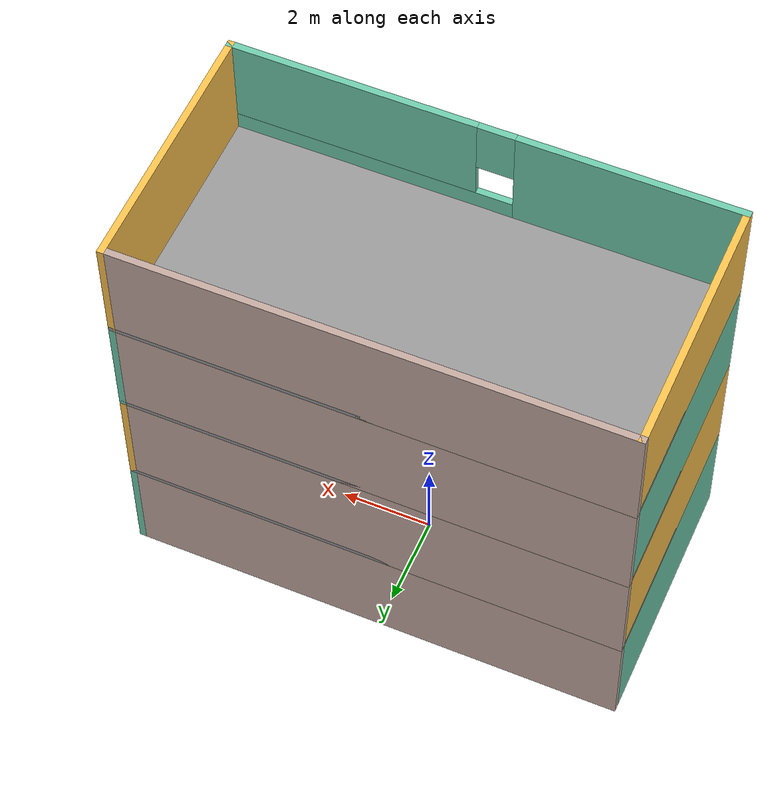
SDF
<?xml version='1.0'?>
<sdf version='1.4'>
  <model name='building2'>
    <pose>0.161621 -0.206032 0 0 -0 0</pose>
    <link name='Floor_1'>
      <collision name='Floor_1_Collision'>
        <geometry>
          <box>
            <size>11 5.75 0.1</size>
          </box>
        </geometry>
        <pose>0 0 0.05 0 -0 0</pose>
      </collision>
      <visual name='Floor_1_Visual'>
        <pose>0 0 0.05 0 -0 0</pose>
        <geometry>
          <box>
            <size>11 5.75 0.1</size>
          </box>
        </geometry>
        <material>
          <script>
            <uri>file://media/materials/scripts/gazebo.material</uri>
            <name>Gazebo/Grey</name>
          </script>
          <ambient>1 1 1 1</ambient>
        </material>
      </visual>
      <pose>-0 0 2.5 0 -0 0</pose>
    </link>
    <link name='Floor_2'>
      <collision name='Floor_2_Collision'>
        <geometry>
          <box>
            <size>11 5.75 0.1</size>
          </box>
        </geometry>
        <pose>0 0 0.05 0 -0 0</pose>
      </collision>
      <visual name='Floor_2_Visual'>
        <pose>0 0 0.05 0 -0 0</pose>
        <geometry>
          <box>
            <size>11 5.75 0.1</size>
          </box>
        </geometry>
        <material>
          <script>
            <uri>file://media/materials/scripts/gazebo.material</uri>
            <name>Gazebo/Grey</name>
          </script>
          <ambient>1 1 1 1</ambient>
        </material>
      </visual>
      <pose>-0 0 5 0 -0 0</pose>
    </link>
    <link name='Floor_3'>
      <collision name='Floor_3_Collision'>
        <geometry>
          <box>
            <size>11 5.75 0.1</size>
          </box>
        </geometry>
        <pose>0 0 0.05 0 -0 0</pose>
      </collision>
      <visual name='Floor_3_Visual'>
        <pose>0 0 0.05 0 -0 0</pose>
        <geometry>
          <box>
            <size>11 5.75 0.1</size>
          </box>
        </geometry>
        <material>
          <script>
            <uri>file://media/materials/scripts/gazebo.material</uri>
            <name>Gazebo/Grey</name>
          </script>
          <ambient>1 1 1 1</ambient>
        </material>
      </visual>
      <pose>-0 0 7.5 0 -0 0</pose>
    </link>
    <link name='Wall_10'>
      <collision name='Wall_10_Collision'>
        <geometry>
          <box>
            <size>5.75 0.15 2.5</size>
          </box>
        </geometry>
        <pose>0 0 1.25 0 -0 0</pose>
      </collision>
      <visual name='Wall_10_Visual'>
        <pose>0 0 1.25 0 -0 0</pose>
        <geometry>
          <box>
            <size>5.75 0.15 2.5</size>
          </box>
        </geometry>
        <material>
          <script>
            <uri>file://media/materials/scripts/gazebo.material</uri>
            <name>Gazebo/Grey</name>
          </script>
          <ambient>0.435294 0.796078 0.67451 1</ambient>
        </material>
      </visual>
      <pose>5.425 0 0 0 -0 1.5708</pose>
    </link>
    <link name='Wall_11'>
      <collision name='Wall_11_Collision'>
        <geometry>
          <box>
            <size>11 0.15 2.5</size>
          </box>
        </geometry>
        <pose>0 0 1.25 0 -0 0</pose>
      </collision>
      <visual name='Wall_11_Visual'>
        <pose>0 0 1.25 0 -0 0</pose>
        <geometry>
          <box>
            <size>11 0.15 2.5</size>
          </box>
        </geometry>
        <material>
          <script>
            <uri>file://media/materials/scripts/gazebo.material</uri>
            <name>Gazebo/Grey</name>
          </script>
          <ambient>0.760784 0.662745 0.627451 1</ambient>
        </material>
      </visual>
      <pose>-0 2.8 0 0 -0 3.14159</pose>
    </link>
    <link name='Wall_12'>
      <collision name='Wall_12_Collision'>
        <geometry>
          <box>
            <size>5.75 0.15 2.5</size>
          </box>
        </geometry>
        <pose>0 0 1.25 0 -0 0</pose>
      </collision>
      <visual name='Wall_12_Visual'>
        <pose>0 0 1.25 0 -0 0</pose>
        <geometry>
          <box>
            <size>5.75 0.15 2.5</size>
          </box>
        </geometry>
        <material>
          <script>
            <uri>file://media/materials/scripts/gazebo.material</uri>
            <name>Gazebo/Grey</name>
          </script>
          <ambient>0.435294 0.796078 0.67451 1</ambient>
        </material>
      </visual>
      <pose>-5.425 0 0 0 0 -1.5708</pose>
    </link>
    <link name='Wall_14'>
      <pose>-0 -2.8 2.5 0 -0 0</pose>
      <visual name='Wall_14_Visual_0'>
        <pose>-4.78604 0 1.25 0 -0 0</pose>
        <geometry>
          <box>
            <size>1.42793 0.15 2.5</size>
          </box>
        </geometry>
        <material>
          <script>
            <uri>file://media/materials/scripts/gazebo.material</uri>
            <name>Gazebo/Grey</name>
          </script>
          <ambient>0.435294 0.796078 0.67451 1</ambient>
        </material>
      </visual>
      <collision name='Wall_14_Collision_0'>
        <geometry>
          <box>
            <size>1.42793 0.15 2.5</size>
          </box>
        </geometry>
        <pose>-4.78604 0 1.25 0 -0 0</pose>
      </collision>
      <visual name='Wall_14_Visual_1'>
        <pose>0.713965 0 0.25 0 -0 0</pose>
        <geometry>
          <box>
            <size>9.57207 0.15 0.5</size>
          </box>
        </geometry>
        <material>
          <script>
            <uri>file://media/materials/scripts/gazebo.material</uri>
            <name>Gazebo/Grey</name>
          </script>
          <ambient>0.435294 0.796078 0.67451 1</ambient>
        </material>
      </visual>
      <collision name='Wall_14_Collision_1'>
        <geometry>
          <box>
            <size>9.57207 0.15 0.5</size>
          </box>
        </geometry>
        <pose>0.713965 0 0.25 0 -0 0</pose>
      </collision>
      <visual name='Wall_14_Visual_2'>
        <pose>0.069283 0 1.5 0 -0 0</pose>
        <geometry>
          <box>
            <size>6.68271 0.15 2</size>
          </box>
        </geometry>
        <material>
          <script>
            <uri>file://media/materials/scripts/gazebo.material</uri>
            <name>Gazebo/Grey</name>
          </script>
          <ambient>0.435294 0.796078 0.67451 1</ambient>
        </material>
      </visual>
      <collision name='Wall_14_Collision_2'>
        <geometry>
          <box>
            <size>6.68271 0.15 2</size>
          </box>
        </geometry>
        <pose>0.069283 0 1.5 0 -0 0</pose>
      </collision>
      <visual name='Wall_14_Visual_3'>
        <pose>4.85532 0 1.5 0 -0 0</pose>
        <geometry>
          <box>
            <size>1.28937 0.15 2</size>
          </box>
        </geometry>
        <material>
          <script>
            <uri>file://media/materials/scripts/gazebo.material</uri>
            <name>Gazebo/Grey</name>
          </script>
          <ambient>0.435294 0.796078 0.67451 1</ambient>
        </material>
      </visual>
      <collision name='Wall_14_Collision_3'>
        <geometry>
          <box>
            <size>1.28937 0.15 2</size>
          </box>
        </geometry>
        <pose>4.85532 0 1.5 0 -0 0</pose>
      </collision>
      <visual name='Wall_14_Visual_4'>
        <pose>-3.67207 0 1.9 0 -0 0</pose>
        <geometry>
          <box>
            <size>0.8 0.15 1.2</size>
          </box>
        </geometry>
        <material>
          <script>
            <uri>file://media/materials/scripts/gazebo.material</uri>
            <name>Gazebo/Grey</name>
          </script>
          <ambient>0.435294 0.796078 0.67451 1</ambient>
        </material>
      </visual>
      <collision name='Wall_14_Collision_4'>
        <geometry>
          <box>
            <size>0.8 0.15 1.2</size>
          </box>
        </geometry>
        <pose>-3.67207 0 1.9 0 -0 0</pose>
      </collision>
      <visual name='Wall_14_Visual_5'>
        <pose>3.81063 0 1.9 0 -0 0</pose>
        <geometry>
          <box>
            <size>0.8 0.15 1.2</size>
          </box>
        </geometry>
        <material>
          <script>
            <uri>file://media/materials/scripts/gazebo.material</uri>
            <name>Gazebo/Grey</name>
          </script>
          <ambient>0.435294 0.796078 0.67451 1</ambient>
        </material>
      </visual>
      <collision name='Wall_14_Collision_5'>
        <geometry>
          <box>
            <size>0.8 0.15 1.2</size>
          </box>
        </geometry>
        <pose>3.81063 0 1.9 0 -0 0</pose>
      </collision>
    </link>
    <link name='Wall_15'>
      <collision name='Wall_15_Collision'>
        <geometry>
          <box>
            <size>5.75 0.15 2.5</size>
          </box>
        </geometry>
        <pose>0 0 1.25 0 -0 0</pose>
      </collision>
      <visual name='Wall_15_Visual'>
        <pose>0 0 1.25 0 -0 0</pose>
        <geometry>
          <box>
            <size>5.75 0.15 2.5</size>
          </box>
        </geometry>
        <material>
          <script>
            <uri>file://media/materials/scripts/gazebo.material</uri>
            <name>Gazebo/Grey</name>
          </script>
          <ambient>1 0.764706 0.305882 1</ambient>
        </material>
      </visual>
      <pose>5.425 0 2.5 0 -0 1.5708</pose>
    </link>
    <link name='Wall_16'>
      <collision name='Wall_16_Collision'>
        <geometry>
          <box>
            <size>11 0.15 2.5</size>
          </box>
        </geometry>
        <pose>0 0 1.25 0 -0 0</pose>
      </collision>
      <visual name='Wall_16_Visual'>
        <pose>0 0 1.25 0 -0 0</pose>
        <geometry>
          <box>
            <size>11 0.15 2.5</size>
          </box>
        </geometry>
        <material>
          <script>
            <uri>file://media/materials/scripts/gazebo.material</uri>
            <name>Gazebo/Grey</name>
          </script>
          <ambient>0.760784 0.662745 0.627451 1</ambient>
        </material>
      </visual>
      <pose>-0 2.8 2.5 0 -0 3.14159</pose>
    </link>
    <link name='Wall_17'>
      <collision name='Wall_17_Collision'>
        <geometry>
          <box>
            <size>5.75 0.15 2.5</size>
          </box>
        </geometry>
        <pose>0 0 1.25 0 -0 0</pose>
      </collision>
      <visual name='Wall_17_Visual'>
        <pose>0 0 1.25 0 -0 0</pose>
        <geometry>
          <box>
            <size>5.75 0.15 2.5</size>
          </box>
        </geometry>
        <material>
          <script>
            <uri>file://media/materials/scripts/gazebo.material</uri>
            <name>Gazebo/Grey</name>
          </script>
          <ambient>1 0.764706 0.305882 1</ambient>
        </material>
      </visual>
      <pose>-5.425 0 2.5 0 0 -1.5708</pose>
    </link>
    <link name='Wall_18'>
      <pose>-0 -2.8 5 0 -0 0</pose>
      <visual name='Wall_18_Visual_0'>
        <pose>-4.78604 0 1.25 0 -0 0</pose>
        <geometry>
          <box>
            <size>1.42793 0.15 2.5</size>
          </box>
        </geometry>
        <material>
          <script>
            <uri>file://media/materials/scripts/gazebo.material</uri>
            <name>Gazebo/Grey</name>
          </script>
          <ambient>0.996078 0.47451 0.0196078 1</ambient>
        </material>
      </visual>
      <collision name='Wall_18_Collision_0'>
        <geometry>
          <box>
            <size>1.42793 0.15 2.5</size>
          </box>
        </geometry>
        <pose>-4.78604 0 1.25 0 -0 0</pose>
      </collision>
      <visual name='Wall_18_Visual_1'>
        <pose>0.713965 0 0.25 0 -0 0</pose>
        <geometry>
          <box>
            <size>9.57207 0.15 0.5</size>
          </box>
        </geometry>
        <material>
          <script>
            <uri>file://media/materials/scripts/gazebo.material</uri>
            <name>Gazebo/Grey</name>
          </script>
          <ambient>0.996078 0.47451 0.0196078 1</ambient>
        </material>
      </visual>
      <collision name='Wall_18_Collision_1'>
        <geometry>
          <box>
            <size>9.57207 0.15 0.5</size>
          </box>
        </geometry>
        <pose>0.713965 0 0.25 0 -0 0</pose>
      </collision>
      <visual name='Wall_18_Visual_2'>
        <pose>0.038865 0 1.5 0 -0 0</pose>
        <geometry>
          <box>
            <size>6.62187 0.15 2</size>
          </box>
        </geometry>
        <material>
          <script>
            <uri>file://media/materials/scripts/gazebo.material</uri>
            <name>Gazebo/Grey</name>
          </script>
          <ambient>0.996078 0.47451 0.0196078 1</ambient>
        </material>
      </visual>
      <collision name='Wall_18_Collision_2'>
        <geometry>
          <box>
            <size>6.62187 0.15 2</size>
          </box>
        </geometry>
        <pose>0.038865 0 1.5 0 -0 0</pose>
      </collision>
      <visual name='Wall_18_Visual_3'>
        <pose>4.8249 0 1.5 0 -0 0</pose>
        <geometry>
          <box>
            <size>1.3502 0.15 2</size>
          </box>
        </geometry>
        <material>
          <script>
            <uri>file://media/materials/scripts/gazebo.material</uri>
            <name>Gazebo/Grey</name>
          </script>
          <ambient>0.996078 0.47451 0.0196078 1</ambient>
        </material>
      </visual>
      <collision name='Wall_18_Collision_3'>
        <geometry>
          <box>
            <size>1.3502 0.15 2</size>
          </box>
        </geometry>
        <pose>4.8249 0 1.5 0 -0 0</pose>
      </collision>
      <visual name='Wall_18_Visual_4'>
        <pose>-3.67207 0 1.9 0 -0 0</pose>
        <geometry>
          <box>
            <size>0.8 0.15 1.2</size>
          </box>
        </geometry>
        <material>
          <script>
            <uri>file://media/materials/scripts/gazebo.material</uri>
            <name>Gazebo/Grey</name>
          </script>
          <ambient>0.996078 0.47451 0.0196078 1</ambient>
        </material>
      </visual>
      <collision name='Wall_18_Collision_4'>
        <geometry>
          <box>
            <size>0.8 0.15 1.2</size>
          </box>
        </geometry>
        <pose>-3.67207 0 1.9 0 -0 0</pose>
      </collision>
      <visual name='Wall_18_Visual_5'>
        <pose>3.7498 0 1.9 0 -0 0</pose>
        <geometry>
          <box>
            <size>0.8 0.15 1.2</size>
          </box>
        </geometry>
        <material>
          <script>
            <uri>file://media/materials/scripts/gazebo.material</uri>
            <name>Gazebo/Grey</name>
          </script>
          <ambient>0.996078 0.47451 0.0196078 1</ambient>
        </material>
      </visual>
      <collision name='Wall_18_Collision_5'>
        <geometry>
          <box>
            <size>0.8 0.15 1.2</size>
          </box>
        </geometry>
        <pose>3.7498 0 1.9 0 -0 0</pose>
      </collision>
    </link>
    <link name='Wall_19'>
      <collision name='Wall_19_Collision'>
        <geometry>
          <box>
            <size>5.75 0.15 2.5</size>
          </box>
        </geometry>
        <pose>0 0 1.25 0 -0 0</pose>
      </collision>
      <visual name='Wall_19_Visual'>
        <pose>0 0 1.25 0 -0 0</pose>
        <geometry>
          <box>
            <size>5.75 0.15 2.5</size>
          </box>
        </geometry>
        <material>
          <script>
            <uri>file://media/materials/scripts/gazebo.material</uri>
            <name>Gazebo/Grey</name>
          </script>
          <ambient>0.435294 0.796078 0.67451 1</ambient>
        </material>
      </visual>
      <pose>5.425 0 5 0 -0 1.5708</pose>
    </link>
    <link name='Wall_20'>
      <collision name='Wall_20_Collision'>
        <geometry>
          <box>
            <size>11 0.15 2.5</size>
          </box>
        </geometry>
        <pose>0 0 1.25 0 -0 0</pose>
      </collision>
      <visual name='Wall_20_Visual'>
        <pose>0 0 1.25 0 -0 0</pose>
        <geometry>
          <box>
            <size>11 0.15 2.5</size>
          </box>
        </geometry>
        <material>
          <script>
            <uri>file://media/materials/scripts/gazebo.material</uri>
            <name>Gazebo/Grey</name>
          </script>
          <ambient>0.760784 0.662745 0.627451 1</ambient>
        </material>
      </visual>
      <pose>-0 2.8 5 0 -0 3.14159</pose>
    </link>
    <link name='Wall_21'>
      <collision name='Wall_21_Collision'>
        <geometry>
          <box>
            <size>5.75 0.15 2.5</size>
          </box>
        </geometry>
        <pose>0 0 1.25 0 -0 0</pose>
      </collision>
      <visual name='Wall_21_Visual'>
        <pose>0 0 1.25 0 -0 0</pose>
        <geometry>
          <box>
            <size>5.75 0.15 2.5</size>
          </box>
        </geometry>
        <material>
          <script>
            <uri>file://media/materials/scripts/gazebo.material</uri>
            <name>Gazebo/Grey</name>
          </script>
          <ambient>0.435294 0.796078 0.67451 1</ambient>
        </material>
      </visual>
      <pose>-5.425 0 5 0 0 -1.5708</pose>
    </link>
    <link name='Wall_22'>
      <pose>-0 -2.8 7.5 0 -0 0</pose>
      <visual name='Wall_22_Visual_0'>
        <pose>-3.09786 0 1.25 0 -0 0</pose>
        <geometry>
          <box>
            <size>4.80427 0.15 2.5</size>
          </box>
        </geometry>
        <material>
          <script>
            <uri>file://media/materials/scripts/gazebo.material</uri>
            <name>Gazebo/Grey</name>
          </script>
          <ambient>0.435294 0.796078 0.67451 1</ambient>
        </material>
      </visual>
      <collision name='Wall_22_Collision_0'>
        <geometry>
          <box>
            <size>4.80427 0.15 2.5</size>
          </box>
        </geometry>
        <pose>-3.09786 0 1.25 0 -0 0</pose>
      </collision>
      <visual name='Wall_22_Visual_1'>
        <pose>2.40214 0 0.25 0 -0 0</pose>
        <geometry>
          <box>
            <size>6.19573 0.15 0.5</size>
          </box>
        </geometry>
        <material>
          <script>
            <uri>file://media/materials/scripts/gazebo.material</uri>
            <name>Gazebo/Grey</name>
          </script>
          <ambient>0.435294 0.796078 0.67451 1</ambient>
        </material>
      </visual>
      <collision name='Wall_22_Collision_1'>
        <geometry>
          <box>
            <size>6.19573 0.15 0.5</size>
          </box>
        </geometry>
        <pose>2.40214 0 0.25 0 -0 0</pose>
      </collision>
      <visual name='Wall_22_Visual_2'>
        <pose>2.80214 0 1.5 0 -0 0</pose>
        <geometry>
          <box>
            <size>5.39573 0.15 2</size>
          </box>
        </geometry>
        <material>
          <script>
            <uri>file://media/materials/scripts/gazebo.material</uri>
            <name>Gazebo/Grey</name>
          </script>
          <ambient>0.435294 0.796078 0.67451 1</ambient>
        </material>
      </visual>
      <collision name='Wall_22_Collision_2'>
        <geometry>
          <box>
            <size>5.39573 0.15 2</size>
          </box>
        </geometry>
        <pose>2.80214 0 1.5 0 -0 0</pose>
      </collision>
      <visual name='Wall_22_Visual_3'>
        <pose>-0.295727 0 1.9 0 -0 0</pose>
        <geometry>
          <box>
            <size>0.8 0.15 1.2</size>
          </box>
        </geometry>
        <material>
          <script>
            <uri>file://media/materials/scripts/gazebo.material</uri>
            <name>Gazebo/Grey</name>
          </script>
          <ambient>0.435294 0.796078 0.67451 1</ambient>
        </material>
      </visual>
      <collision name='Wall_22_Collision_3'>
        <geometry>
          <box>
            <size>0.8 0.15 1.2</size>
          </box>
        </geometry>
        <pose>-0.295727 0 1.9 0 -0 0</pose>
      </collision>
    </link>
    <link name='Wall_23'>
      <collision name='Wall_23_Collision'>
        <geometry>
          <box>
            <size>5.75 0.15 2.5</size>
          </box>
        </geometry>
        <pose>0 0 1.25 0 -0 0</pose>
      </collision>
      <visual name='Wall_23_Visual'>
        <pose>0 0 1.25 0 -0 0</pose>
        <geometry>
          <box>
            <size>5.75 0.15 2.5</size>
          </box>
        </geometry>
        <material>
          <script>
            <uri>file://media/materials/scripts/gazebo.material</uri>
            <name>Gazebo/Grey</name>
          </script>
          <ambient>1 0.764706 0.305882 1</ambient>
        </material>
      </visual>
      <pose>5.425 0 7.5 0 -0 1.5708</pose>
    </link>
    <link name='Wall_24'>
      <collision name='Wall_24_Collision'>
        <geometry>
          <box>
            <size>11 0.15 2.5</size>
          </box>
        </geometry>
        <pose>0 0 1.25 0 -0 0</pose>
      </collision>
      <visual name='Wall_24_Visual'>
        <pose>0 0 1.25 0 -0 0</pose>
        <geometry>
          <box>
            <size>11 0.15 2.5</size>
          </box>
        </geometry>
        <material>
          <script>
            <uri>file://media/materials/scripts/gazebo.material</uri>
            <name>Gazebo/Grey</name>
          </script>
          <ambient>0.760784 0.662745 0.627451 1</ambient>
        </material>
      </visual>
      <pose>-0 2.8 7.5 0 -0 3.14159</pose>
    </link>
    <link name='Wall_25'>
      <collision name='Wall_25_Collision'>
        <geometry>
          <box>
            <size>5.75 0.15 2.5</size>
          </box>
        </geometry>
        <pose>0 0 1.25 0 -0 0</pose>
      </collision>
      <visual name='Wall_25_Visual'>
        <pose>0 0 1.25 0 -0 0</pose>
        <geometry>
          <box>
            <size>5.75 0.15 2.5</size>
          </box>
        </geometry>
        <material>
          <script>
            <uri>file://media/materials/scripts/gazebo.material</uri>
            <name>Gazebo/Grey</name>
          </script>
          <ambient>1 0.764706 0.305882 1</ambient>
        </material>
      </visual>
      <pose>-5.425 0 7.5 0 0 -1.5708</pose>
    </link>
    <link name='Wall_9'>
      <pose>-0 -2.8 0 0 -0 0</pose>
      <visual name='Wall_9_Visual_0'>
        <pose>-4.78604 0 1.25 0 -0 0</pose>
        <geometry>
          <box>
            <size>1.42793 0.15 2.5</size>
          </box>
        </geometry>
        <material>
          <script>
            <uri>file://media/materials/scripts/gazebo.material</uri>
            <name>Gazebo/Grey</name>
          </script>
          <ambient>0.996078 0.47451 0.0196078 1</ambient>
        </material>
      </visual>
      <collision name='Wall_9_Collision_0'>
        <geometry>
          <box>
            <size>1.42793 0.15 2.5</size>
          </box>
        </geometry>
        <pose>-4.78604 0 1.25 0 -0 0</pose>
      </collision>
      <visual name='Wall_9_Visual_1'>
        <pose>1.79766 0 1.25 0 -0 0</pose>
        <geometry>
          <box>
            <size>3.28678 0.15 2.5</size>
          </box>
        </geometry>
        <material>
          <script>
            <uri>file://media/materials/scripts/gazebo.material</uri>
            <name>Gazebo/Grey</name>
          </script>
          <ambient>0.996078 0.47451 0.0196078 1</ambient>
        </material>
      </visual>
      <collision name='Wall_9_Collision_1'>
        <geometry>
          <box>
            <size>3.28678 0.15 2.5</size>
          </box>
        </geometry>
        <pose>1.79766 0 1.25 0 -0 0</pose>
      </collision>
      <visual name='Wall_9_Visual_2'>
        <pose>-2.4089 0 0.25 0 -0 0</pose>
        <geometry>
          <box>
            <size>3.32634 0.15 0.5</size>
          </box>
        </geometry>
        <material>
          <script>
            <uri>file://media/materials/scripts/gazebo.material</uri>
            <name>Gazebo/Grey</name>
          </script>
          <ambient>0.996078 0.47451 0.0196078 1</ambient>
        </material>
      </visual>
      <collision name='Wall_9_Collision_2'>
        <geometry>
          <box>
            <size>3.32634 0.15 0.5</size>
          </box>
        </geometry>
        <pose>-2.4089 0 0.25 0 -0 0</pose>
      </collision>
      <visual name='Wall_9_Visual_3'>
        <pose>4.47053 0 0.25 0 -0 0</pose>
        <geometry>
          <box>
            <size>2.05895 0.15 0.5</size>
          </box>
        </geometry>
        <material>
          <script>
            <uri>file://media/materials/scripts/gazebo.material</uri>
            <name>Gazebo/Grey</name>
          </script>
          <ambient>0.996078 0.47451 0.0196078 1</ambient>
        </material>
      </visual>
      <collision name='Wall_9_Collision_3'>
        <geometry>
          <box>
            <size>2.05895 0.15 0.5</size>
          </box>
        </geometry>
        <pose>4.47053 0 0.25 0 -0 0</pose>
      </collision>
      <visual name='Wall_9_Visual_4'>
        <pose>-2.0089 0 1.5 0 -0 0</pose>
        <geometry>
          <box>
            <size>2.52634 0.15 2</size>
          </box>
        </geometry>
        <material>
          <script>
            <uri>file://media/materials/scripts/gazebo.material</uri>
            <name>Gazebo/Grey</name>
          </script>
          <ambient>0.996078 0.47451 0.0196078 1</ambient>
        </material>
      </visual>
      <collision name='Wall_9_Collision_4'>
        <geometry>
          <box>
            <size>2.52634 0.15 2</size>
          </box>
        </geometry>
        <pose>-2.0089 0 1.5 0 -0 0</pose>
      </collision>
      <visual name='Wall_9_Visual_5'>
        <pose>-2.0089 0 1.5 0 -0 0</pose>
        <geometry>
          <box>
            <size>2.52634 0.15 2</size>
          </box>
        </geometry>
        <material>
          <script>
            <uri>file://media/materials/scripts/gazebo.material</uri>
            <name>Gazebo/Grey</name>
          </script>
          <ambient>0.996078 0.47451 0.0196078 1</ambient>
        </material>
      </visual>
      <collision name='Wall_9_Collision_5'>
        <geometry>
          <box>
            <size>2.52634 0.15 2</size>
          </box>
        </geometry>
        <pose>-2.0089 0 1.5 0 -0 0</pose>
      </collision>
      <visual name='Wall_9_Visual_6'>
        <pose>4.87053 0 1.5 0 -0 0</pose>
        <geometry>
          <box>
            <size>1.25895 0.15 2</size>
          </box>
        </geometry>
        <material>
          <script>
            <uri>file://media/materials/scripts/gazebo.material</uri>
            <name>Gazebo/Grey</name>
          </script>
          <ambient>0.996078 0.47451 0.0196078 1</ambient>
        </material>
      </visual>
      <collision name='Wall_9_Collision_6'>
        <geometry>
          <box>
            <size>1.25895 0.15 2</size>
          </box>
        </geometry>
        <pose>4.87053 0 1.5 0 -0 0</pose>
      </collision>
      <visual name='Wall_9_Visual_7'>
        <pose>-3.67207 0 1.9 0 -0 0</pose>
        <geometry>
          <box>
            <size>0.8 0.15 1.2</size>
          </box>
        </geometry>
        <material>
          <script>
            <uri>file://media/materials/scripts/gazebo.material</uri>
            <name>Gazebo/Grey</name>
          </script>
          <ambient>0.996078 0.47451 0.0196078 1</ambient>
        </material>
      </visual>
      <collision name='Wall_9_Collision_7'>
        <geometry>
          <box>
            <size>0.8 0.15 1.2</size>
          </box>
        </geometry>
        <pose>-3.67207 0 1.9 0 -0 0</pose>
      </collision>
      <visual name='Wall_9_Visual_8'>
        <pose>3.84105 0 1.9 0 -0 0</pose>
        <geometry>
          <box>
            <size>0.8 0.15 1.2</size>
          </box>
        </geometry>
        <material>
          <script>
            <uri>file://media/materials/scripts/gazebo.material</uri>
            <name>Gazebo/Grey</name>
          </script>
          <ambient>0.996078 0.47451 0.0196078 1</ambient>
        </material>
      </visual>
      <collision name='Wall_9_Collision_8'>
        <geometry>
          <box>
            <size>0.8 0.15 1.2</size>
          </box>
        </geometry>
        <pose>3.84105 0 1.9 0 -0 0</pose>
      </collision>
      <visual name='Wall_9_Visual_9'>
        <pose>-0.295727 0 2.25 0 -0 0</pose>
        <geometry>
          <box>
            <size>0.9 0.15 0.5</size>
          </box>
        </geometry>
        <material>
          <script>
            <uri>file://media/materials/scripts/gazebo.material</uri>
            <name>Gazebo/Grey</name>
          </script>
          <ambient>0.996078 0.47451 0.0196078 1</ambient>
        </material>
      </visual>
      <collision name='Wall_9_Collision_9'>
        <geometry>
          <box>
            <size>0.9 0.15 0.5</size>
          </box>
        </geometry>
        <pose>-0.295727 0 2.25 0 -0 0</pose>
      </collision>
      <visual name='Wall_9_Visual_10'>
        <pose>-0.295727 0 2.25 0 -0 0</pose>
        <geometry>
          <box>
            <size>0.9 0.15 0.5</size>
          </box>
        </geometry>
        <material>
          <script>
            <uri>file://media/materials/scripts/gazebo.material</uri>
            <name>Gazebo/Grey</name>
          </script>
          <ambient>0.996078 0.47451 0.0196078 1</ambient>
        </material>
      </visual>
      <collision name='Wall_9_Collision_10'>
        <geometry>
          <box>
            <size>0.9 0.15 0.5</size>
          </box>
        </geometry>
        <pose>-0.295727 0 2.25 0 -0 0</pose>
      </collision>
    </link>
    <static>1</static>
  </model>
</sdf>
